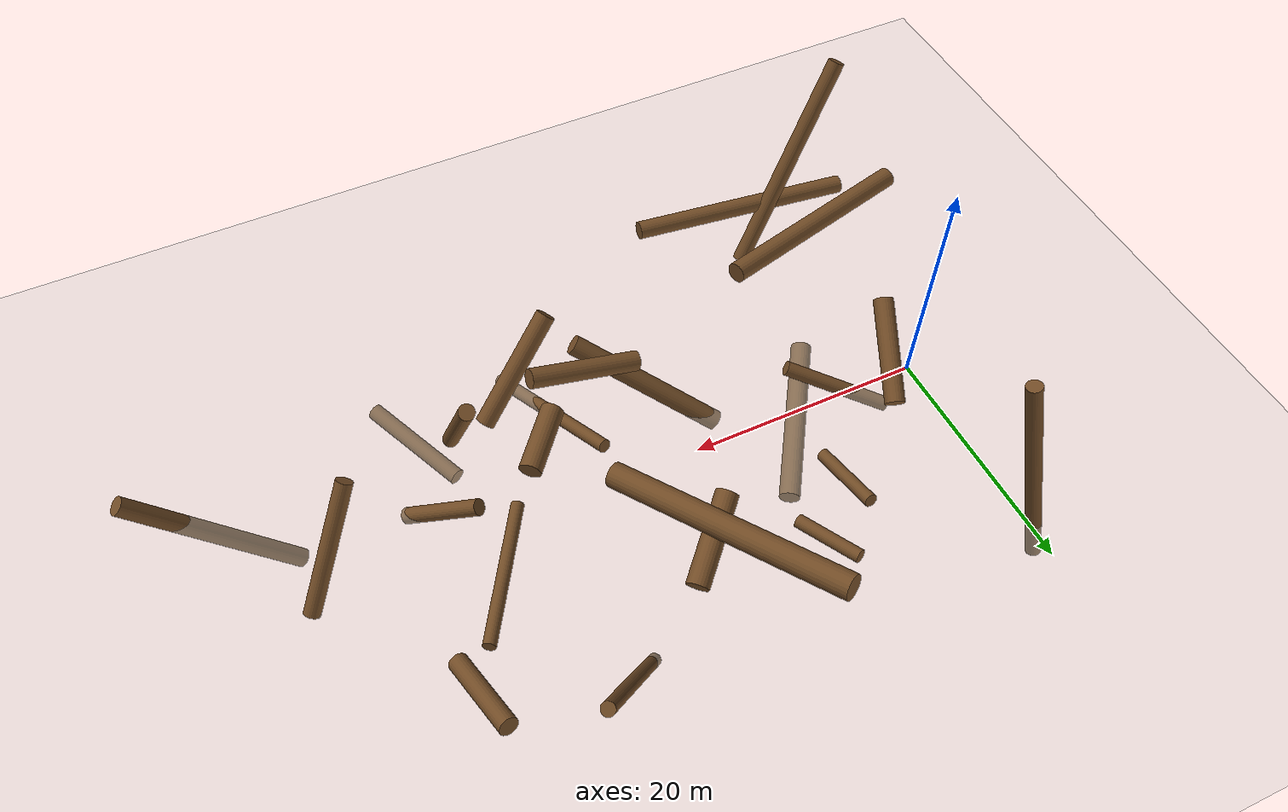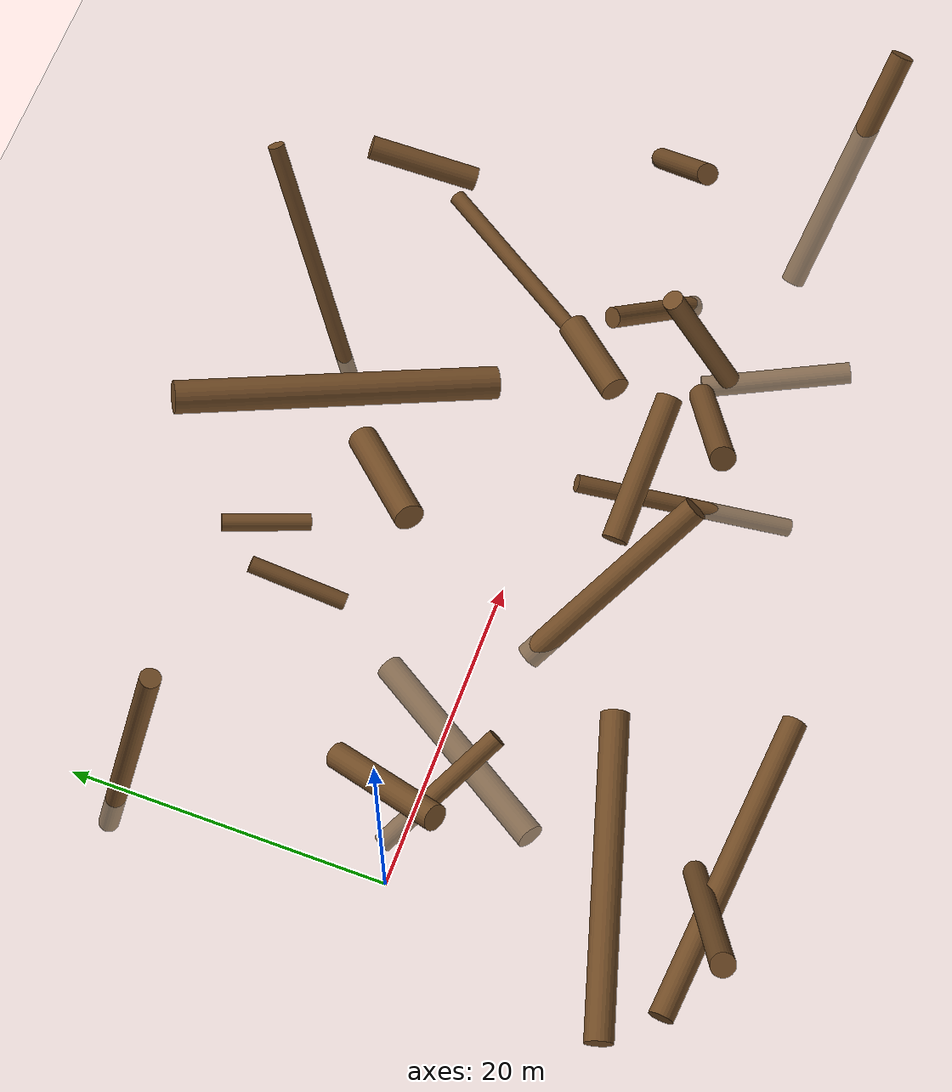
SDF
<sdf version='1.7'>
            <world name='default'>
                <light name='sun' type='directional'>
                <cast_shadows>1</cast_shadows>
                <pose>0 0 10 0 -0 0</pose>
                <diffuse>0.8 0.8 0.8 1</diffuse>
                <specular>0.2 0.2 0.2 1</specular>
                <attenuation>
                    <range>1000</range>
                    <constant>0.9</constant>
                    <linear>0.01</linear>
                    <quadratic>0.001</quadratic>
                </attenuation>
                <direction>-0.5 0.1 -0.9</direction>
                <spot>
                    <inner_angle>0</inner_angle>
                    <outer_angle>0</outer_angle>
                    <falloff>0</falloff>
                </spot>
                </light>
                <model name='ground_plane'>
                <static>1</static>
                <link name='link'>
                    <collision name='collision'>
                    <geometry>
                        <plane>
                        <normal>0 0 1</normal>
                        <size>100 100</size>
                        </plane>
                    </geometry>
                    <surface>
                        <contact>
                        <collide_bitmask>65535</collide_bitmask>
                        <ode/>
                        </contact>
                        <friction>
                        <ode>
                            <mu>100</mu>
                            <mu2>50</mu2>
                        </ode>
                        <torsional>
                            <ode/>
                        </torsional>
                        </friction>
                        <bounce/>
                    </surface>
                    <max_contacts>10</max_contacts>
                    </collision>
                    <visual name='visual'>
                    <cast_shadows>0</cast_shadows>
                    <geometry>
                        <plane>
                        <normal>0 0 1</normal>
                        <size>100 100</size>
                        </plane>
                    </geometry>
                    <material>
                        <script>
                        <uri>file://media/materials/scripts/gazebo.material</uri>
                        <name>Gazebo/Grey</name>
                        </script>
                    </material>
                    </visual>
                    <self_collide>0</self_collide>
                    <enable_wind>0</enable_wind>
                    <kinematic>0</kinematic>
                </link>
                </model>
                <gravity>0 0 -9.8</gravity>
                <magnetic_field>6e-06 2.3e-05 -4.2e-05</magnetic_field>
                <atmosphere type='adiabatic'/>
                <physics type='ode'>
                <max_step_size>0.001</max_step_size>
                <real_time_factor>1</real_time_factor>
                <real_time_update_rate>1000</real_time_update_rate>
                </physics>
                <scene>
                <ambient>0.4 0.4 0.4 1</ambient>
                <background>0.7 0.7 0.7 1</background>
                <shadows>1</shadows>
                </scene>
                <wind/>
                <spherical_coordinates>
                <surface_model>EARTH_WGS84</surface_model>
                <latitude_deg>0</latitude_deg>
                <longitude_deg>0</longitude_deg>
                <elevation>0</elevation>
                <heading_deg>0</heading_deg>
                </spherical_coordinates>
                <model name='cylinder_1'>
      <static>1</static>
      <link name='link'>
        <pose frame=''>0 0 0.1 0 -0 0</pose>
        <collision name='collision_trunk'>
          <pose frame=''>0 0 2 0 -0 0</pose>
          <geometry>
            <cylinder>
              <radius>0.7486442806316143</radius>
              <length>7.01346499538477</length>
            </cylinder>
          </geometry>
        </collision>
        <visual name='trunk'>
          <pose frame=''>0 0 2 0 -0 0</pose>
          <geometry>
            <cylinder>
              <radius>0.7486442806316143</radius>
              <length>7.01346499538477</length>
            </cylinder>
          </geometry>
          <material>
            <script>
              <uri>model://tree_simple/scripts</uri>
              <uri>model://tree_simple/materials/textures</uri>
              <name>TreeSimple/Trunk</name>
            </script>
          </material>
        </visual>
        <self_collide>0</self_collide>
        <kinematic>0</kinematic>
      </link>
      <pose frame=''>44.59371454055014 12.343244695108126 4.0529978150089345 44.79507838439795 137.05578054956646 98.27483952404688</pose>
    </model>
    <model name='cylinder_2'>
      <static>1</static>
      <link name='link'>
        <pose frame=''>0 0 0.1 0 -0 0</pose>
        <collision name='collision_trunk'>
          <pose frame=''>0 0 2 0 -0 0</pose>
          <geometry>
            <cylinder>
              <radius>0.7077987049895584</radius>
          <length>19.187741766552016</length>
            </cylinder>
          </geometry>
        </collision>
        <visual name='trunk'>
          <pose frame=''>0 0 2 0 -0 0</pose>
          <geometry>
            <cylinder>
              <radius>0.7077987049895584</radius>
          <length>19.187741766552016</length>
            </cylinder>
          </geometry>
          <material>
            <script>
              <uri>model://tree_simple/scripts</uri>
              <uri>model://tree_simple/materials/textures</uri>
              <name>TreeSimple/Trunk</name>
            </script>
          </material>
        </visual>
        <self_collide>0</self_collide>
        <kinematic>0</kinematic>
      </link>
      <pose frame=''>3.1270989071362965 -18.216310118998067 6.729309061474673 53.61885691697704 123.04765658199143 72.21506043345416</pose>
    </model>
    <model name='cylinder_3'>
      <static>1</static>
      <link name='link'>
        <pose frame=''>0 0 0.1 0 -0 0</pose>
        <collision name='collision_trunk'>
          <pose frame=''>0 0 2 0 -0 0</pose>
          <geometry>
            <cylinder>
              <radius>0.8260689126582641</radius>
          <length>8.547806910896112</length>
            </cylinder>
          </geometry>
        </collision>
        <visual name='trunk'>
          <pose frame=''>0 0 2 0 -0 0</pose>
          <geometry>
            <cylinder>
              <radius>0.8260689126582641</radius>
          <length>8.547806910896112</length>
            </cylinder>
          </geometry>
          <material>
            <script>
              <uri>model://tree_simple/scripts</uri>
              <uri>model://tree_simple/materials/textures</uri>
              <name>TreeSimple/Trunk</name>
            </script>
          </material>
        </visual>
        <self_collide>0</self_collide>
        <kinematic>0</kinematic>
      </link>
      <pose frame=''>3.1565283743106765 -0.45602844417267363 6.679812633849021 155.03762059227293 151.1193466310808 162.83664587083464</pose>
    </model>
    <model name='cylinder_4'>
      <static>1</static>
      <link name='link'>
        <pose frame=''>0 0 0.1 0 -0 0</pose>
        <collision name='collision_trunk'>
          <pose frame=''>0 0 2 0 -0 0</pose>
          <geometry>
            <cylinder>
              <radius>0.6651262928270647</radius>
          <length>7.4358903997671035</length>
            </cylinder>
          </geometry>
        </collision>
        <visual name='trunk'>
          <pose frame=''>0 0 2 0 -0 0</pose>
          <geometry>
            <cylinder>
              <radius>0.6651262928270647</radius>
          <length>7.4358903997671035</length>
            </cylinder>
          </geometry>
          <material>
            <script>
              <uri>model://tree_simple/scripts</uri>
              <uri>model://tree_simple/materials/textures</uri>
              <name>TreeSimple/Trunk</name>
            </script>
          </material>
        </visual>
        <self_collide>0</self_collide>
        <kinematic>0</kinematic>
      </link>
      <pose frame=''>42.33163050238677 -3.6987880787102654 0.0534874005492485 107.80631769673674 144.2872550149622 41.839789244974114</pose>
    </model>
    <model name='cylinder_5'>
      <static>1</static>
      <link name='link'>
        <pose frame=''>0 0 0.1 0 -0 0</pose>
        <collision name='collision_trunk'>
          <pose frame=''>0 0 2 0 -0 0</pose>
          <geometry>
            <cylinder>
              <radius>0.7782358024854791</radius>
          <length>17.01076235052858</length>
            </cylinder>
          </geometry>
        </collision>
        <visual name='trunk'>
          <pose frame=''>0 0 2 0 -0 0</pose>
          <geometry>
            <cylinder>
              <radius>0.7782358024854791</radius>
          <length>17.01076235052858</length>
            </cylinder>
          </geometry>
          <material>
            <script>
              <uri>model://tree_simple/scripts</uri>
              <uri>model://tree_simple/materials/textures</uri>
              <name>TreeSimple/Trunk</name>
            </script>
          </material>
        </visual>
        <self_collide>0</self_collide>
        <kinematic>0</kinematic>
      </link>
      <pose frame=''>59.03776579940061 -10.937726676986701 -1.046017174639453 98.0855678343392 81.280235689934 96.03818412835936</pose>
    </model>
    <model name='cylinder_6'>
      <static>1</static>
      <link name='link'>
        <pose frame=''>0 0 0.1 0 -0 0</pose>
        <collision name='collision_trunk'>
          <pose frame=''>0 0 2 0 -0 0</pose>
          <geometry>
            <cylinder>
              <radius>0.6288235671127234</radius>
          <length>19.512303160059226</length>
            </cylinder>
          </geometry>
        </collision>
        <visual name='trunk'>
          <pose frame=''>0 0 2 0 -0 0</pose>
          <geometry>
            <cylinder>
              <radius>0.6288235671127234</radius>
          <length>19.512303160059226</length>
            </cylinder>
          </geometry>
          <material>
            <script>
              <uri>model://tree_simple/scripts</uri>
              <uri>model://tree_simple/materials/textures</uri>
              <name>TreeSimple/Trunk</name>
            </script>
          </material>
        </visual>
        <self_collide>0</self_collide>
        <kinematic>0</kinematic>
      </link>
      <pose frame=''>0.16680082849822364 16.2727454378847 3.787944762417006 87.90817954042846 75.6388364197576 80.63720424332784</pose>
    </model>
    <model name='cylinder_7'>
      <static>1</static>
      <link name='link'>
        <pose frame=''>0 0 0.1 0 -0 0</pose>
        <collision name='collision_trunk'>
          <pose frame=''>0 0 2 0 -0 0</pose>
          <geometry>
            <cylinder>
              <radius>0.6124896624037697</radius>
          <length>9.422268080899443</length>
            </cylinder>
          </geometry>
        </collision>
        <visual name='trunk'>
          <pose frame=''>0 0 2 0 -0 0</pose>
          <geometry>
            <cylinder>
              <radius>0.6124896624037697</radius>
          <length>9.422268080899443</length>
            </cylinder>
          </geometry>
          <material>
            <script>
              <uri>model://tree_simple/scripts</uri>
              <uri>model://tree_simple/materials/textures</uri>
              <name>TreeSimple/Trunk</name>
            </script>
          </material>
        </visual>
        <self_collide>0</self_collide>
        <kinematic>0</kinematic>
      </link>
      <pose frame=''>8.147960508442743 -1.9345434158963961 0.8561407101972485 4.012447141102948 139.17816309218233 44.40159543313171</pose>
    </model>
    <model name='cylinder_8'>
      <static>1</static>
      <link name='link'>
        <pose frame=''>0 0 0.1 0 -0 0</pose>
        <collision name='collision_trunk'>
          <pose frame=''>0 0 2 0 -0 0</pose>
          <geometry>
            <cylinder>
              <radius>0.6823204471085077</radius>
          <length>10.973531906534525</length>
            </cylinder>
          </geometry>
        </collision>
        <visual name='trunk'>
          <pose frame=''>0 0 2 0 -0 0</pose>
          <geometry>
            <cylinder>
              <radius>0.6823204471085077</radius>
          <length>10.973531906534525</length>
            </cylinder>
          </geometry>
          <material>
            <script>
              <uri>model://tree_simple/scripts</uri>
              <uri>model://tree_simple/materials/textures</uri>
              <name>TreeSimple/Trunk</name>
            </script>
          </material>
        </visual>
        <self_collide>0</self_collide>
        <kinematic>0</kinematic>
      </link>
      <pose frame=''>51.17528900724551 -0.42577940099726064 2.3926199492632723 0.5793569557219569 144.8762789476575 11.183881256232288</pose>
    </model>
    <model name='cylinder_9'>
      <static>1</static>
      <link name='link'>
        <pose frame=''>0 0 0.1 0 -0 0</pose>
        <collision name='collision_trunk'>
          <pose frame=''>0 0 2 0 -0 0</pose>
          <geometry>
            <cylinder>
              <radius>0.8230200001700463</radius>
          <length>13.96705332294413</length>
            </cylinder>
          </geometry>
        </collision>
        <visual name='trunk'>
          <pose frame=''>0 0 2 0 -0 0</pose>
          <geometry>
            <cylinder>
              <radius>0.8230200001700463</radius>
          <length>13.96705332294413</length>
            </cylinder>
          </geometry>
          <material>
            <script>
              <uri>model://tree_simple/scripts</uri>
              <uri>model://tree_simple/materials/textures</uri>
              <name>TreeSimple/Trunk</name>
            </script>
          </material>
        </visual>
        <self_collide>0</self_collide>
        <kinematic>0</kinematic>
      </link>
      <pose frame=''>20.24356053480534 -5.249396734131103 1.3588408256255233 15.917220170516376 71.23649639325598 97.00722448588532</pose>
    </model>
    <model name='cylinder_10'>
      <static>1</static>
      <link name='link'>
        <pose frame=''>0 0 0.1 0 -0 0</pose>
        <collision name='collision_trunk'>
          <pose frame=''>0 0 2 0 -0 0</pose>
          <geometry>
            <cylinder>
              <radius>0.5178197307266472</radius>
          <length>16.457912452236187</length>
            </cylinder>
          </geometry>
        </collision>
        <visual name='trunk'>
          <pose frame=''>0 0 2 0 -0 0</pose>
          <geometry>
            <cylinder>
              <radius>0.5178197307266472</radius>
          <length>16.457912452236187</length>
            </cylinder>
          </geometry>
          <material>
            <script>
              <uri>model://tree_simple/scripts</uri>
              <uri>model://tree_simple/materials/textures</uri>
              <name>TreeSimple/Trunk</name>
            </script>
          </material>
        </visual>
        <self_collide>0</self_collide>
        <kinematic>0</kinematic>
      </link>
      <pose frame=''>33.842187837831055 17.146034980139234 3.34561641004035 91.55291283334633 104.198036620115 106.83012773824109</pose>
    </model>
    <model name='cylinder_11'>
      <static>1</static>
      <link name='link'>
        <pose frame=''>0 0 0.1 0 -0 0</pose>
        <collision name='collision_trunk'>
          <pose frame=''>0 0 2 0 -0 0</pose>
          <geometry>
            <cylinder>
              <radius>0.5289892945954928</radius>
          <length>5.3708462079179515</length>
            </cylinder>
          </geometry>
        </collision>
        <visual name='trunk'>
          <pose frame=''>0 0 2 0 -0 0</pose>
          <geometry>
            <cylinder>
              <radius>0.5289892945954928</radius>
          <length>5.3708462079179515</length>
            </cylinder>
          </geometry>
          <material>
            <script>
              <uri>model://tree_simple/scripts</uri>
              <uri>model://tree_simple/materials/textures</uri>
              <name>TreeSimple/Trunk</name>
            </script>
          </material>
        </visual>
        <self_collide>0</self_collide>
        <kinematic>0</kinematic>
      </link>
      <pose frame=''>17.928623210573164 12.189758430709986 5.068277553426842 36.60268835734978 64.0864742904613 0.8768802774942208</pose>
    </model>
        <model name='cylinder_12'>
      <static>1</static>
      <link name='link'>
        <pose frame=''>0 0 0.1 0 -0 0</pose>
        <collision name='collision_trunk'>
          <pose frame=''>0 0 2 0 -0 0</pose>
          <geometry>
            <cylinder>
              <radius>0.5095243327173913</radius>
          <length>6.0408281485737945</length>
            </cylinder>
          </geometry>
        </collision>
        <visual name='trunk'>
          <pose frame=''>0 0 2 0 -0 0</pose>
          <geometry>
            <cylinder>
              <radius>0.5095243327173913</radius>
          <length>6.0408281485737945</length>
            </cylinder>
          </geometry>
          <material>
            <script>
              <uri>model://tree_simple/scripts</uri>
              <uri>model://tree_simple/materials/textures</uri>
              <name>TreeSimple/Trunk</name>
            </script>
          </material>
        </visual>
        <self_collide>0</self_collide>
        <kinematic>0</kinematic>
      </link>
      <pose frame=''>13.73606014514202 8.581824150652558 5.864089520954803 145.64353577162234 132.85016657957144 65.66486115292575</pose>
    </model>
    <model name='cylinder_13'>
      <static>1</static>
      <link name='link'>
        <pose frame=''>0 0 0.1 0 -0 0</pose>
        <collision name='collision_trunk'>
          <pose frame=''>0 0 2 0 -0 0</pose>
          <geometry>
            <cylinder>
              <radius>0.8546329157055439</radius>
          <length>18.998398928547367</length>
            </cylinder>
          </geometry>
        </collision>
        <visual name='trunk'>
          <pose frame=''>0 0 2 0 -0 0</pose>
          <geometry>
            <cylinder>
              <radius>0.8546329157055439</radius>
          <length>18.998398928547367</length>
            </cylinder>
          </geometry>
          <material>
            <script>
              <uri>model://tree_simple/scripts</uri>
              <uri>model://tree_simple/materials/textures</uri>
              <name>TreeSimple/Trunk</name>
            </script>
          </material>
        </visual>
        <self_collide>0</self_collide>
        <kinematic>0</kinematic>
      </link>
      <pose frame=''>4.80023765862144 -11.889392008091173 7.255791705977124 143.02072967781015 140.78950459490616 71.01957594829872</pose>
    </model>
    <model name='cylinder_14'>
      <static>1</static>
      <link name='link'>
        <pose frame=''>0 0 0.1 0 -0 0</pose>
        <collision name='collision_trunk'>
          <pose frame=''>0 0 2 0 -0 0</pose>
          <geometry>
            <cylinder>
              <radius>0.6756756750625461</radius>
          <length>9.465093040045845</length>
            </cylinder>
          </geometry>
        </collision>
        <visual name='trunk'>
          <pose frame=''>0 0 2 0 -0 0</pose>
          <geometry>
            <cylinder>
              <radius>0.6756756750625461</radius>
          <length>9.465093040045845</length>
            </cylinder>
          </geometry>
          <material>
            <script>
              <uri>model://tree_simple/scripts</uri>
              <uri>model://tree_simple/materials/textures</uri>
              <name>TreeSimple/Trunk</name>
            </script>
          </material>
        </visual>
        <self_collide>0</self_collide>
        <kinematic>0</kinematic>
      </link>
      <pose frame=''>39.4013828750447 -9.209292050143443 -1.329551277652529 39.056742821268344 61.57194163754017 107.44505274482259</pose>
    </model>
    <model name='cylinder_15'>
      <static>1</static>
      <link name='link'>
        <pose frame=''>0 0 0.1 0 -0 0</pose>
        <collision name='collision_trunk'>
          <pose frame=''>0 0 2 0 -0 0</pose>
          <geometry>
            <cylinder>
              <radius>0.8653287337700323</radius>
          <length>14.596408154972979</length>
            </cylinder>
          </geometry>
        </collision>
        <visual name='trunk'>
          <pose frame=''>0 0 2 0 -0 0</pose>
          <geometry>
            <cylinder>
              <radius>0.8653287337700323</radius>
          <length>14.596408154972979</length>
            </cylinder>
          </geometry>
          <material>
            <script>
              <uri>model://tree_simple/scripts</uri>
              <uri>model://tree_simple/materials/textures</uri>
              <name>TreeSimple/Trunk</name>
            </script>
          </material>
        </visual>
        <self_collide>0</self_collide>
        <kinematic>0</kinematic>
      </link>
      <pose frame=''>11.285045737878194 0.9958196470061935 -2.7135277555213517 61.395402185851516 150.5564179200639 134.4772818560727</pose>
    </model>
    <model name='cylinder_101'>
  <static>1</static>
  <link name='link'>
    <pose frame=''>0 0 0.1 0 -0 0</pose>
    <collision name='collision_trunk'>
      <pose frame=''>0 0 2 0 -0 0</pose>
      <geometry>
        <cylinder>
          <radius>0.5155790457</radius>
          <length>11.9378891821</length>
        </cylinder>
      </geometry>
    </collision>
    <visual name='trunk'>
      <pose frame=''>0 0 2 0 -0 0</pose>
      <geometry>
        <cylinder>
          <radius>0.5155790457</radius>
          <length>11.9378891821</length>
        </cylinder>
      </geometry>
      <material>
        <script>
          <uri>model://tree_simple/scripts</uri>
          <uri>model://tree_simple/materials/textures</uri>
          <name>TreeSimple/Trunk</name>
        </script>
      </material>
    </visual>
    <self_collide>0</self_collide>
    <kinematic>0</kinematic>
  </link>
  <pose frame=''>38.2505976667 4.6032970421 4.5548057205 54.3876689121 240.3806446224 168.4911023573</pose>
</model>

<model name='cylinder_102'>
  <static>1</static>
  <link name='link'>
    <pose frame=''>0 0 0.1 0 -0 0</pose>
    <collision name='collision_trunk'>
      <pose frame=''>0 0 2 0 -0 0</pose>
      <geometry>
        <cylinder>
          <radius>0.7950881306</radius>
          <length>9.9132683892</length>
        </cylinder>
      </geometry>
    </collision>
    <visual name='trunk'>
      <pose frame=''>0 0 2 0 -0 0</pose>
      <geometry>
        <cylinder>
          <radius>0.7950881306</radius>
          <length>9.9132683892</length>
        </cylinder>
      </geometry>
      <material>
        <script>
          <uri>model://tree_simple/scripts</uri>
          <uri>model://tree_simple/materials/textures</uri>
          <name>TreeSimple/Trunk</name>
        </script>
      </material>
    </visual>
    <self_collide>0</self_collide>
    <kinematic>0</kinematic>
  </link>
  <pose frame=''>33.3159263726 -8.402260312 5.1274197269 239.5099286642 320.9145902989 168.0510211981</pose>
</model>

<model name='cylinder_103'>
  <static>1</static>
  <link name='link'>
    <pose frame=''>0 0 0.1 0 -0 0</pose>
    <collision name='collision_trunk'>
      <pose frame=''>0 0 2 0 -0 0</pose>
      <geometry>
        <cylinder>
          <radius>0.9518950709</radius>
          <length>7.5721329158</length>
        </cylinder>
      </geometry>
    </collision>
    <visual name='trunk'>
      <pose frame=''>0 0 2 0 -0 0</pose>
      <geometry>
        <cylinder>
          <radius>0.9518950709</radius>
          <length>7.5721329158</length>
        </cylinder>
      </geometry>
      <material>
        <script>
          <uri>model://tree_simple/scripts</uri>
          <uri>model://tree_simple/materials/textures</uri>
          <name>TreeSimple/Trunk</name>
        </script>
      </material>
    </visual>
    <self_collide>0</self_collide>
    <kinematic>0</kinematic>
  </link>
  <pose frame=''>22.2730011821 7.6445576608 2.9440186325 327.6867066681 71.268785395 209.1750593501</pose>
</model>

<model name='cylinder_104'>
  <static>1</static>
  <link name='link'>
    <pose frame=''>0 0 0.1 0 -0 0</pose>
    <collision name='collision_trunk'>
      <pose frame=''>0 0 2 0 -0 0</pose>
      <geometry>
        <cylinder>
          <radius>0.7600514075</radius>
          <length>19.1904790247</length>
        </cylinder>
      </geometry>
    </collision>
    <visual name='trunk'>
      <pose frame=''>0 0 2 0 -0 0</pose>
      <geometry>
        <cylinder>
          <radius>0.7600514075</radius>
          <length>19.1904790247</length>
        </cylinder>
      </geometry>
      <material>
        <script>
          <uri>model://tree_simple/scripts</uri>
          <uri>model://tree_simple/materials/textures</uri>
          <name>TreeSimple/Trunk</name>
        </script>
      </material>
    </visual>
    <self_collide>0</self_collide>
    <kinematic>0</kinematic>
  </link>
  <pose frame=''>4.2299007898 -18.5174654064 4.9192353916 142.6776008447 328.4432755591 349.9386234472</pose>
</model>

<model name='cylinder_105'>
  <static>1</static>
  <link name='link'>
    <pose frame=''>0 0 0.1 0 -0 0</pose>
    <collision name='collision_trunk'>
      <pose frame=''>0 0 2 0 -0 0</pose>
      <geometry>
        <cylinder>
          <radius>0.8967500965</radius>
          <length>5.3814882643</length>
        </cylinder>
      </geometry>
    </collision>
    <visual name='trunk'>
      <pose frame=''>0 0 2 0 -0 0</pose>
      <geometry>
        <cylinder>
          <radius>0.8967500965</radius>
          <length>5.3814882643</length>
        </cylinder>
      </geometry>
      <material>
        <script>
          <uri>model://tree_simple/scripts</uri>
          <uri>model://tree_simple/materials/textures</uri>
          <name>TreeSimple/Trunk</name>
        </script>
      </material>
    </visual>
    <self_collide>0</self_collide>
    <kinematic>0</kinematic>
  </link>
  <pose frame=''>31.7099125631 -2.5357211171 8.2361092511 96.2822455844 114.3669231434 159.9323677411</pose>
</model>

<model name='cylinder_106'>
  <static>1</static>
  <link name='link'>
    <pose frame=''>0 0 0.1 0 -0 0</pose>
    <collision name='collision_trunk'>
      <pose frame=''>0 0 2 0 -0 0</pose>
      <geometry>
        <cylinder>
          <radius>0.5516985056</radius>
          <length>14.2123644863</length>
        </cylinder>
      </geometry>
    </collision>
    <visual name='trunk'>
      <pose frame=''>0 0 2 0 -0 0</pose>
      <geometry>
        <cylinder>
          <radius>0.5516985056</radius>
          <length>14.2123644863</length>
        </cylinder>
      </geometry>
      <material>
        <script>
          <uri>model://tree_simple/scripts</uri>
          <uri>model://tree_simple/materials/textures</uri>
          <name>TreeSimple/Trunk</name>
        </script>
      </material>
    </visual>
    <self_collide>0</self_collide>
    <kinematic>0</kinematic>
  </link>
  <pose frame=''>28.6952986689 -6.6487688668 0.7184439434 114.2178305065 274.0717282192 44.5840392589</pose>
</model>

<model name='cylinder_107'>
  <static>1</static>
  <link name='link'>
    <pose frame=''>0 0 0.1 0 -0 0</pose>
    <collision name='collision_trunk'>
      <pose frame=''>0 0 2 0 -0 0</pose>
      <geometry>
        <cylinder>
          <radius>0.8073088407</radius>
          <length>9.281306293</length>
        </cylinder>
      </geometry>
    </collision>
    <visual name='trunk'>
      <pose frame=''>0 0 2 0 -0 0</pose>
      <geometry>
        <cylinder>
          <radius>0.8073088407</radius>
          <length>9.281306293</length>
        </cylinder>
      </geometry>
      <material>
        <script>
          <uri>model://tree_simple/scripts</uri>
          <uri>model://tree_simple/materials/textures</uri>
          <name>TreeSimple/Trunk</name>
        </script>
      </material>
    </visual>
    <self_collide>0</self_collide>
    <kinematic>0</kinematic>
  </link>
  <pose frame=''>25.2644796939 -6.0580046113 6.8890197763 44.3466986854 51.579805174 251.6744847995</pose>
</model>

<model name='cylinder_108'>
  <static>1</static>
  <link name='link'>
    <pose frame=''>0 0 0.1 0 -0 0</pose>
    <collision name='collision_trunk'>
      <pose frame=''>0 0 2 0 -0 0</pose>
      <geometry>
        <cylinder>
          <radius>0.9906907552</radius>
          <length>19.6103166783</length>
        </cylinder>
      </geometry>
    </collision>
    <visual name='trunk'>
      <pose frame=''>0 0 2 0 -0 0</pose>
      <geometry>
        <cylinder>
          <radius>0.9906907552</radius>
          <length>19.6103166783</length>
        </cylinder>
      </geometry>
      <material>
        <script>
          <uri>model://tree_simple/scripts</uri>
          <uri>model://tree_simple/materials/textures</uri>
          <name>TreeSimple/Trunk</name>
        </script>
      </material>
    </visual>
    <self_collide>0</self_collide>
    <kinematic>0</kinematic>
  </link>
  <pose frame=''>25.8860359371 10.5862160805 9.2156419181 9.5555633473 209.1039859809 174.9944562962</pose>
</model>

<model name='cylinder_109'>
  <static>1</static>
  <link name='link'>
    <pose frame=''>0 0 0.1 0 -0 0</pose>
    <collision name='collision_trunk'>
      <pose frame=''>0 0 2 0 -0 0</pose>
      <geometry>
        <cylinder>
          <radius>0.665653135</radius>
          <length>9.3393865354</length>
        </cylinder>
      </geometry>
    </collision>
    <visual name='trunk'>
      <pose frame=''>0 0 2 0 -0 0</pose>
      <geometry>
        <cylinder>
          <radius>0.665653135</radius>
          <length>9.3393865354</length>
        </cylinder>
      </geometry>
      <material>
        <script>
          <uri>model://tree_simple/scripts</uri>
          <uri>model://tree_simple/materials/textures</uri>
          <name>TreeSimple/Trunk</name>
        </script>
      </material>
    </visual>
    <self_collide>0</self_collide>
    <kinematic>0</kinematic>
  </link>
  <pose frame=''>37.6651536008 -5.5497253192 7.4097119944 301.3251648902 85.2002559977 102.8427051734</pose>
</model>
            </world>
            </sdf>
